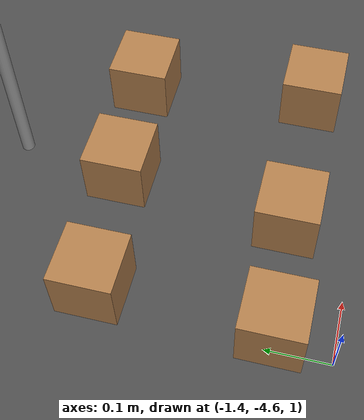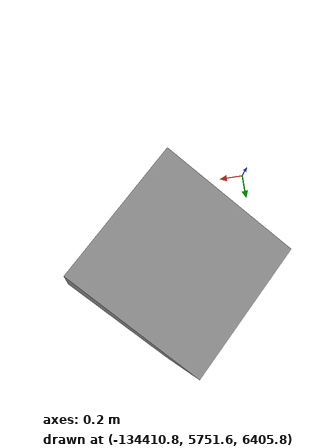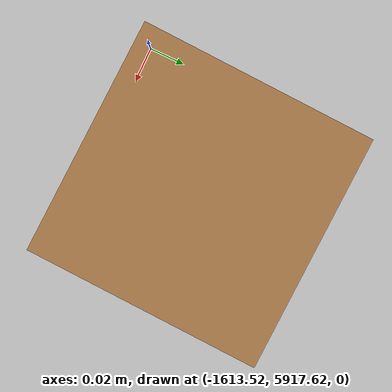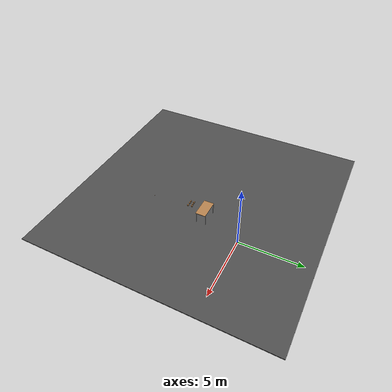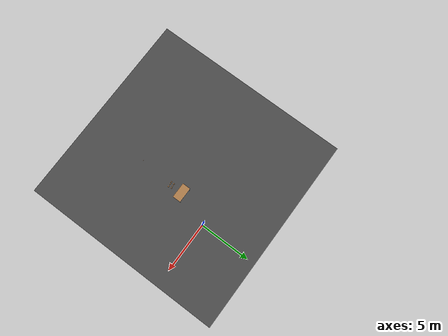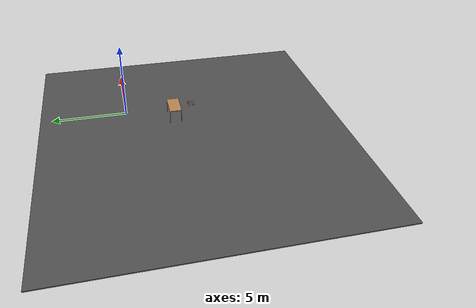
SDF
<sdf version="1.7">
 <world name="default">
  <light name="sun" type="directional">
   <pose>0 0 10 0 -0 0</pose>
   <diffuse>0.8 0.8 0.8 1</diffuse>
   <specular>0.2 0.2 0.2 1</specular>
   <attenuation>
    <range>1000</range>
    <constant>0.9</constant>
    <linear>0.01</linear>
    <quadratic>0.001</quadratic>
   </attenuation>
   <direction>-0.5 0.1 -0.9</direction>
   <spot><inner_angle>0</inner_angle><outer_angle>0</outer_angle><falloff>0</falloff></spot>
  </light>
  <model name="ground_plane">
   <static>1</static>
   <link name="link">
    <collision name="collision">
     <geometry><plane><normal>0 0 1</normal><size>100 100</size></plane></geometry>
     <surface>
      <contact><collide_bitmask>65535</collide_bitmask></contact>
      <friction><ode><mu>100</mu><mu2>50</mu2></ode></friction>
     </surface>
    </collision>
    <visual name="visual">
     <cast_shadows>0</cast_shadows>
     <geometry><plane><normal>0 0 1</normal><size>100 100</size></plane></geometry>
     <material>
      <script><uri>file://media/materials/scripts/gazebo.material</uri><name>Gazebo/Grey</name></script>
     </material>
    </visual>
   </link>
  </model>
  <gravity>0 0 -1.62</gravity>
  <magnetic_field>6e-06 2.3e-05 -4.2e-05</magnetic_field>
  <atmosphere type="adiabatic"/>
  <physics type="ode">
   <max_step_size>0.001</max_step_size>
   <real_time_factor>1</real_time_factor>
   <real_time_update_rate>1000</real_time_update_rate>
  </physics>
  <scene><ambient>0.4 0.4 0.4 1</ambient><background>0.7 0.7 0.7 1</background><shadows>1</shadows></scene>
  <audio><device>default</device></audio>
  <spherical_coordinates>
   <surface_model>EARTH_WGS84</surface_model>
   <latitude_deg>0</latitude_deg>
   <longitude_deg>0</longitude_deg>
   <elevation>0</elevation>
   <heading_deg>0</heading_deg>
  </spherical_coordinates>
  <model name="stone_10_2_5_1cm">
   <link name="link">
    <pose>0 0 0.005 0 -0 0</pose>
    <inertial>
     <mass>0.0628</mass>
     <inertia>
      <ixx>3.79417e-06</ixx>
      <ixy>0</ixy>
      <ixz>0</ixz>
      <iyy>5.28567e-05</iyy>
      <iyz>0</iyz>
      <izz>5.56042e-05</izz>
     </inertia>
    </inertial>
    <collision name="collision">
     <geometry><box><size>0.1 0.025 0.01</size></box></geometry>
     <surface>
      <contact>
       <poissons_ratio>0.15</poissons_ratio>
       <elastic_modulus>8e+10</elastic_modulus>
       <ode><kp>100000</kp><kd>100</kd><max_vel>100</max_vel><min_depth>0.001</min_depth></ode>
      </contact>
      <friction>
       <torsional>
        <coefficient>1</coefficient>
        <use_patch_radius>0</use_patch_radius>
        <surface_radius>0.01</surface_radius>
       </torsional>
      </friction>
     </surface>
    </collision>
    <visual name="visual">
     <geometry><box><size>0.1 0.025 0.01</size></box></geometry>
     <material>
      <script><uri>file://media/materials/scripts/gazebo.material</uri><name>Gazebo/Grey</name></script>
     </material>
    </visual>
   </link>
   <pose>0.000438 0.000306 -0.02997 0.377781 1.1e-05 -0.032942</pose>
  </model>
  <model name="table">
   <static>1</static>
   <link name="link">
    <collision name="surface">
     <pose>0 0 1 0 -0 0</pose>
     <geometry><box><size>1.5 0.8 0.03</size></box></geometry>
     <surface><friction><ode><mu>0.6</mu><mu2>0.6</mu2></ode></friction></surface>
    </collision>
    <visual name="visual1">
     <pose>0 0 1 0 -0 0</pose>
     <geometry><box><size>1.5 0.8 0.03</size></box></geometry>
     <material>
      <script><uri>file://media/materials/scripts/gazebo.material</uri><name>Gazebo/Wood</name></script>
     </material>
    </visual>
    <collision name="front_left_leg">
     <pose>0.68 0.38 0.5 0 -0 0</pose>
     <geometry><cylinder><radius>0.02</radius><length>1</length></cylinder></geometry>
    </collision>
    <visual name="front_left_leg">
     <pose>0.68 0.38 0.5 0 -0 0</pose>
     <geometry><cylinder><radius>0.02</radius><length>1</length></cylinder></geometry>
     <material>
      <script><uri>file://media/materials/scripts/gazebo.material</uri><name>Gazebo/Grey</name></script>
     </material>
    </visual>
    <collision name="front_right_leg">
     <pose>0.68 -0.38 0.5 0 -0 0</pose>
     <geometry><cylinder><radius>0.02</radius><length>1</length></cylinder></geometry>
    </collision>
    <visual name="front_right_leg">
     <pose>0.68 -0.38 0.5 0 -0 0</pose>
     <geometry><cylinder><radius>0.02</radius><length>1</length></cylinder></geometry>
     <material>
      <script><uri>file://media/materials/scripts/gazebo.material</uri><name>Gazebo/Grey</name></script>
     </material>
    </visual>
    <collision name="back_right_leg">
     <pose>-0.68 -0.38 0.5 0 -0 0</pose>
     <geometry><cylinder><radius>0.02</radius><length>1</length></cylinder></geometry>
    </collision>
    <visual name="back_right_leg">
     <pose>-0.68 -0.38 0.5 0 -0 0</pose>
     <geometry><cylinder><radius>0.02</radius><length>1</length></cylinder></geometry>
     <material>
      <script><uri>file://media/materials/scripts/gazebo.material</uri><name>Gazebo/Grey</name></script>
     </material>
    </visual>
    <collision name="back_left_leg">
     <pose>-0.68 0.38 0.5 0 -0 0</pose>
     <geometry><cylinder><radius>0.02</radius><length>1</length></cylinder></geometry>
    </collision>
    <visual name="back_left_leg">
     <pose>-0.68 0.38 0.5 0 -0 0</pose>
     <geometry><cylinder><radius>0.02</radius><length>1</length></cylinder></geometry>
     <material>
      <script><uri>file://media/materials/scripts/gazebo.material</uri><name>Gazebo/Grey</name></script>
     </material>
    </visual>
   </link>
   <pose>-1.1413 -3.21135 0 0 -0 0</pose>
  </model>
  <model name="wood_block_10_2_1cm">
   <link name="link">
    <pose>0 0 0.005 0 -0 0</pose>
    <inertial>
     <mass>0.0125</mass>
     <inertia>
      <ixx>7.55208e-07</ixx>
      <ixy>0</ixy>
      <ixz>0</ixz>
      <iyy>1.05208e-05</iyy>
      <iyz>0</iyz>
      <izz>1.10677e-05</izz>
     </inertia>
    </inertial>
    <collision name="collision">
     <geometry><box><size>0.1 0.025 0.01</size></box></geometry>
     <surface>
      <contact>
       <poissons_ratio>0.347</poissons_ratio>
       <elastic_modulus>8.8e+09</elastic_modulus>
       <ode><kp>100000</kp><kd>1</kd><max_vel>1</max_vel><min_depth>0.001</min_depth></ode>
      </contact>
      <friction>
       <torsional>
        <coefficient>1</coefficient>
        <use_patch_radius>0</use_patch_radius>
        <surface_radius>0.05</surface_radius>
       </torsional>
      </friction>
     </surface>
    </collision>
    <visual name="visual">
     <geometry><box><size>0.1 0.025 0.01</size></box></geometry>
     <material>
      <script><uri>file://media/materials/scripts/gazebo.material</uri><name>Gazebo/Wood</name></script>
     </material>
    </visual>
   </link>
   <pose>-1.5043 -7.95109 0.049 0 -0 0</pose>
  </model>
  <model name="wood_cube_10cm">
   <link name="link">
    <pose>0 0 0.05 0 -0 0</pose>
    <inertial>
     <mass>0.5167</mass>
     <inertia>
      <ixx>0.000861167</ixx>
      <ixy>0</ixy>
      <ixz>0</ixz>
      <iyy>0.000861167</iyy>
      <iyz>0</iyz>
      <izz>0.000861167</izz>
     </inertia>
    </inertial>
    <collision name="collision">
     <geometry><box><size>0.1 0.1 0.1</size></box></geometry>
     <surface>
      <contact>
       <poissons_ratio>0.347</poissons_ratio>
       <elastic_modulus>8.8e+09</elastic_modulus>
       <ode><kp>100000</kp><kd>100</kd><max_vel>100</max_vel><min_depth>0.001</min_depth></ode>
      </contact>
      <friction>
       <torsional>
        <coefficient>1</coefficient>
        <use_patch_radius>0</use_patch_radius>
        <surface_radius>0.01</surface_radius>
       </torsional>
      </friction>
     </surface>
    </collision>
    <visual name="visual">
     <geometry><box><size>0.1 0.1 0.1</size></box></geometry>
     <material>
      <script><uri>file://media/materials/scripts/gazebo.material</uri><name>Gazebo/Wood</name></script>
     </material>
    </visual>
   </link>
   <pose>-217.047 473.706 0.098998 3.14159 -0 0.289265</pose>
  </model>
  <model name="wood_cube_10cm_clone">
   <link name="link">
    <pose>0 0 0.05 0 -0 0</pose>
    <inertial>
     <mass>0.5167</mass>
     <inertia>
      <ixx>0.000861167</ixx>
      <ixy>0</ixy>
      <ixz>0</ixz>
      <iyy>0.000861167</iyy>
      <iyz>0</iyz>
      <izz>0.000861167</izz>
     </inertia>
    </inertial>
    <collision name="collision">
     <geometry><box><size>0.1 0.1 0.1</size></box></geometry>
     <surface>
      <contact>
       <poissons_ratio>0.347</poissons_ratio>
       <elastic_modulus>8.8e+09</elastic_modulus>
       <ode><kp>100000</kp><kd>100</kd><max_vel>100</max_vel><min_depth>0.001</min_depth></ode>
      </contact>
      <friction>
       <torsional>
        <coefficient>1</coefficient>
        <use_patch_radius>0</use_patch_radius>
        <surface_radius>0.01</surface_radius>
       </torsional>
      </friction>
     </surface>
    </collision>
    <visual name="visual">
     <geometry><box><size>0.1 0.1 0.1</size></box></geometry>
     <material>
      <script><uri>file://media/materials/scripts/gazebo.material</uri><name>Gazebo/Wood</name></script>
     </material>
    </visual>
   </link>
   <pose>-1613.51 5917.68 0.048998 1.5708 0 1.5294</pose>
  </model>
  <model name="unit_box_clone_0">
   <pose>-134410 5752.38 6406.35 -1.48316 -0.192275 -0.812439</pose>
   <link name="link">
    <inertial>
     <mass>1</mass>
     <inertia>
      <ixx>0.166667</ixx>
      <ixy>0</ixy>
      <ixz>0</ixz>
      <iyy>0.166667</iyy>
      <iyz>0</iyz>
      <izz>0.166667</izz>
     </inertia>
    </inertial>
    <collision name="collision"><geometry><box><size>1 1 1</size></box></geometry></collision>
    <visual name="visual">
     <geometry><box><size>1 1 1</size></box></geometry>
     <material>
      <script><name>Gazebo/Grey</name><uri>file://media/materials/scripts/gazebo.material</uri></script>
     </material>
    </visual>
   </link>
  </model>
  <model name="wood_cube_10cm_clone_clone">
   <link name="link">
    <pose>0 0 0.05 0 -0 0</pose>
    <inertial>
     <mass>0.5167</mass>
     <inertia>
      <ixx>0.000861167</ixx>
      <ixy>0</ixy>
      <ixz>0</ixz>
      <iyy>0.000861167</iyy>
      <iyz>0</iyz>
      <izz>0.000861167</izz>
     </inertia>
    </inertial>
    <collision name="collision">
     <geometry><box><size>0.1 0.1 0.1</size></box></geometry>
     <surface>
      <contact>
       <poissons_ratio>0.347</poissons_ratio>
       <elastic_modulus>8.8e+09</elastic_modulus>
       <ode><kp>100000</kp><kd>100</kd><max_vel>100</max_vel><min_depth>0.001</min_depth></ode>
      </contact>
      <friction>
       <torsional>
        <coefficient>1</coefficient>
        <use_patch_radius>0</use_patch_radius>
        <surface_radius>0.01</surface_radius>
       </torsional>
      </friction>
     </surface>
    </collision>
    <visual name="visual">
     <geometry><box><size>0.1 0.1 0.1</size></box></geometry>
     <material>
      <script><uri>file://media/materials/scripts/gazebo.material</uri><name>Gazebo/Wood</name></script>
     </material>
    </visual>
   </link>
   <pose>-0.897756 -4.49285 0.963761 7e-06 4e-06 0</pose>
  </model>
  <model name="wood_cube_10cm_clone_clone_0">
   <link name="link">
    <pose>0 0 0.05 0 -0 0</pose>
    <inertial>
     <mass>0.5167</mass>
     <inertia>
      <ixx>0.000861167</ixx>
      <ixy>0</ixy>
      <ixz>0</ixz>
      <iyy>0.000861167</iyy>
      <iyz>0</iyz>
      <izz>0.000861167</izz>
     </inertia>
    </inertial>
    <collision name="collision">
     <geometry><box><size>0.1 0.1 0.1</size></box></geometry>
     <surface>
      <contact>
       <poissons_ratio>0.347</poissons_ratio>
       <elastic_modulus>8.8e+09</elastic_modulus>
       <ode><kp>100000</kp><kd>100</kd><max_vel>100</max_vel><min_depth>0.001</min_depth></ode>
      </contact>
      <friction>
       <torsional>
        <coefficient>1</coefficient>
        <use_patch_radius>0</use_patch_radius>
        <surface_radius>0.01</surface_radius>
       </torsional>
      </friction>
     </surface>
    </collision>
    <visual name="visual">
     <geometry><box><size>0.1 0.1 0.1</size></box></geometry>
     <material>
      <script><uri>file://media/materials/scripts/gazebo.material</uri><name>Gazebo/Wood</name></script>
     </material>
    </visual>
   </link>
   <pose>-1.13255 -4.20913 0.96376 0 -0 0</pose>
  </model>
  <model name="wood_cube_10cm_clone_clone_1">
   <link name="link">
    <pose>0 0 0.05 0 -0 0</pose>
    <inertial>
     <mass>0.5167</mass>
     <inertia>
      <ixx>0.000861167</ixx>
      <ixy>0</ixy>
      <ixz>0</ixz>
      <iyy>0.000861167</iyy>
      <iyz>0</iyz>
      <izz>0.000861167</izz>
     </inertia>
    </inertial>
    <collision name="collision">
     <geometry><box><size>0.1 0.1 0.1</size></box></geometry>
     <surface>
      <contact>
       <poissons_ratio>0.347</poissons_ratio>
       <elastic_modulus>8.8e+09</elastic_modulus>
       <ode><kp>100000</kp><kd>100</kd><max_vel>100</max_vel><min_depth>0.001</min_depth></ode>
      </contact>
      <friction>
       <torsional>
        <coefficient>1</coefficient>
        <use_patch_radius>0</use_patch_radius>
        <surface_radius>0.01</surface_radius>
       </torsional>
      </friction>
     </surface>
    </collision>
    <visual name="visual">
     <geometry><box><size>0.1 0.1 0.1</size></box></geometry>
     <material>
      <script><uri>file://media/materials/scripts/gazebo.material</uri><name>Gazebo/Wood</name></script>
     </material>
    </visual>
   </link>
   <pose>-0.932673 -4.19364 0.96376 0 -0 0</pose>
  </model>
  <model name="wood_cube_10cm_clone_clone_clone">
   <link name="link">
    <pose>0 0 0.05 0 -0 0</pose>
    <inertial>
     <mass>0.5167</mass>
     <inertia>
      <ixx>0.000861167</ixx>
      <ixy>0</ixy>
      <ixz>0</ixz>
      <iyy>0.000861167</iyy>
      <iyz>0</iyz>
      <izz>0.000861167</izz>
     </inertia>
    </inertial>
    <collision name="collision">
     <geometry><box><size>0.1 0.1 0.1</size></box></geometry>
     <surface>
      <contact>
       <poissons_ratio>0.347</poissons_ratio>
       <elastic_modulus>8.8e+09</elastic_modulus>
       <ode><kp>100000</kp><kd>100</kd><max_vel>100</max_vel><min_depth>0.001</min_depth></ode>
      </contact>
      <friction>
       <torsional>
        <coefficient>1</coefficient>
        <use_patch_radius>0</use_patch_radius>
        <surface_radius>0.01</surface_radius>
       </torsional>
      </friction>
     </surface>
    </collision>
    <visual name="visual">
     <geometry><box><size>0.1 0.1 0.1</size></box></geometry>
     <material>
      <script><uri>file://media/materials/scripts/gazebo.material</uri><name>Gazebo/Wood</name></script>
     </material>
    </visual>
   </link>
   <pose>-1.16434 -4.49688 0.963761 2e-06 -1e-06 -0</pose>
  </model>
  <model name="wood_cube_10cm_clone_clone_clone_0">
   <link name="link">
    <pose>0 0 0.05 0 -0 0</pose>
    <inertial>
     <mass>0.5167</mass>
     <inertia>
      <ixx>0.000861167</ixx>
      <ixy>0</ixy>
      <ixz>0</ixz>
      <iyy>0.000861167</iyy>
      <iyz>0</iyz>
      <izz>0.000861167</izz>
     </inertia>
    </inertial>
    <collision name="collision">
     <geometry><box><size>0.1 0.1 0.1</size></box></geometry>
     <surface>
      <contact>
       <poissons_ratio>0.347</poissons_ratio>
       <elastic_modulus>8.8e+09</elastic_modulus>
       <ode><kp>100000</kp><kd>100</kd><max_vel>100</max_vel><min_depth>0.001</min_depth></ode>
      </contact>
      <friction>
       <torsional>
        <coefficient>1</coefficient>
        <use_patch_radius>0</use_patch_radius>
        <surface_radius>0.01</surface_radius>
       </torsional>
      </friction>
     </surface>
    </collision>
    <visual name="visual">
     <geometry><box><size>0.1 0.1 0.1</size></box></geometry>
     <material>
      <script><uri>file://media/materials/scripts/gazebo.material</uri><name>Gazebo/Wood</name></script>
     </material>
    </visual>
   </link>
   <pose>-1.34633 -4.2289 0.96376 0 -0 0</pose>
  </model>
  <model name="wood_cube_10cm_clone_clone_clone_1">
   <link name="link">
    <pose>0 0 0.05 0 -0 0</pose>
    <inertial>
     <mass>0.5167</mass>
     <inertia>
      <ixx>0.000861167</ixx>
      <ixy>0</ixy>
      <ixz>0</ixz>
      <iyy>0.000861167</iyy>
      <iyz>0</iyz>
      <izz>0.000861167</izz>
     </inertia>
    </inertial>
    <collision name="collision">
     <geometry><box><size>0.1 0.1 0.1</size></box></geometry>
     <surface>
      <contact>
       <poissons_ratio>0.347</poissons_ratio>
       <elastic_modulus>8.8e+09</elastic_modulus>
       <ode><kp>100000</kp><kd>100</kd><max_vel>100</max_vel><min_depth>0.001</min_depth></ode>
      </contact>
      <friction>
       <torsional>
        <coefficient>1</coefficient>
        <use_patch_radius>0</use_patch_radius>
        <surface_radius>0.01</surface_radius>
       </torsional>
      </friction>
     </surface>
    </collision>
    <visual name="visual">
     <geometry><box><size>0.1 0.1 0.1</size></box></geometry>
     <material>
      <script><uri>file://media/materials/scripts/gazebo.material</uri><name>Gazebo/Wood</name></script>
     </material>
    </visual>
   </link>
   <pose>-1.35629 -4.50912 0.96376 0 -0 0</pose>
  </model>
  <model name="asphalt_plane">
   <static>1</static>
   <link name="link">
    <collision name="collision"><geometry><box><size>20 20 0.1</size></box></geometry></collision>
    <visual name="visual">
     <cast_shadows>0</cast_shadows>
     <geometry><box><size>20 20 0.1</size></box></geometry>
     <material>
      <script>
       <uri>model://asphalt_plane/materials/scripts</uri>
       <uri>model://asphalt_plane/materials/textures</uri>
       <name>vrc/asphalt</name>
      </script>
     </material>
    </visual>
   </link>
   <pose>-3.26627 -4.21035 0 0 -0 0</pose>
  </model>
 </world>
</sdf>
